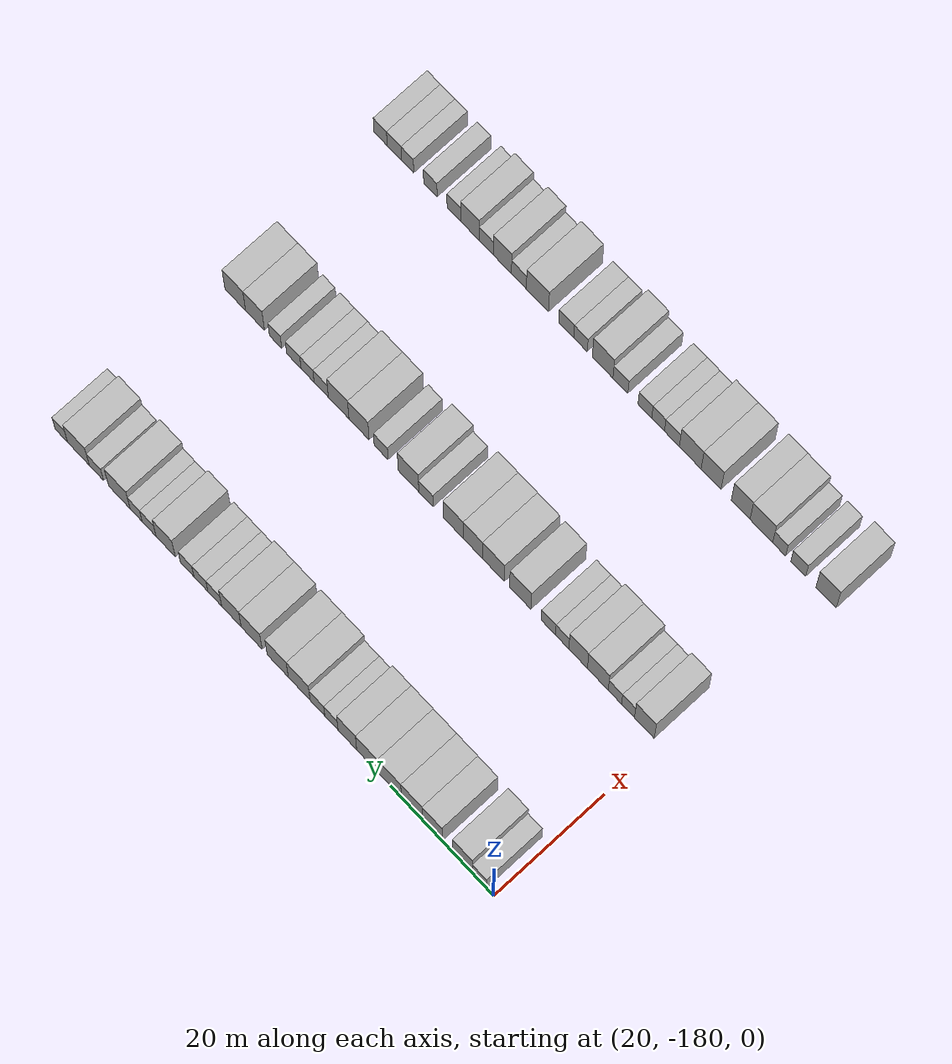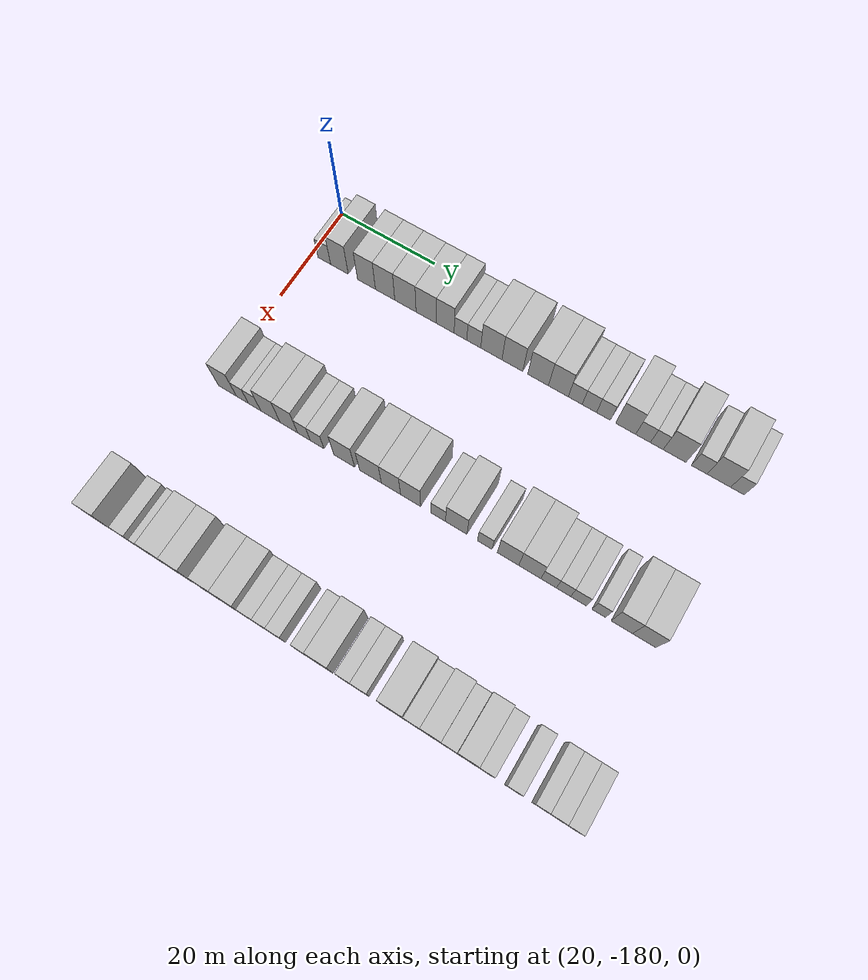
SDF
<sdf version="1.6">
 <world name="default">
  <model name="building_27">
   <static>1</static>
   <pose>25.0000 -177.2182 0 0.000000 0.000000 0.000000</pose>
   <link name="link">
    <pose>0 0 3.00 0 0 0</pose>
    <collision name="collision"><geometry><box><size>10.0000 2.7682 6.0000</size></box></geometry></collision>
    <visual name="visual">
     <cast_shadows>0</cast_shadows>
     <geometry><box><size>10.0000 2.7682 6.0000</size></box></geometry>
     <material>
      <script>
       <uri>model://HANNAS_wall/materials/scripts</uri>
       <uri>model://HANNAS_wall/materials/textures</uri>
       <name>vrc/HANNAS_wall</name>
      </script>
     </material>
    </visual>
   </link>
  </model>
  <model name="building_28">
   <static>1</static>
   <pose>25.0000 -173.9266 0 0.000000 0.000000 0.000000</pose>
   <link name="link">
    <pose>0 0 4.50 0 0 0</pose>
    <collision name="collision"><geometry><box><size>10.0000 3.8148 9.0000</size></box></geometry></collision>
    <visual name="visual">
     <cast_shadows>0</cast_shadows>
     <geometry><box><size>10.0000 3.8148 9.0000</size></box></geometry>
     <material>
      <script>
       <uri>model://HANNAS_wall/materials/scripts</uri>
       <uri>model://HANNAS_wall/materials/textures</uri>
       <name>vrc/HANNAS_wall</name>
      </script>
     </material>
    </visual>
   </link>
  </model>
  <model name="building_29">
   <static>1</static>
   <pose>25.0000 -168.0928 0 0.000000 0.000000 0.000000</pose>
   <link name="link">
    <pose>0 0 4.50 0 0 0</pose>
    <collision name="collision"><geometry><box><size>10.0000 3.8529 9.0000</size></box></geometry></collision>
    <visual name="visual">
     <cast_shadows>0</cast_shadows>
     <geometry><box><size>10.0000 3.8529 9.0000</size></box></geometry>
     <material>
      <script>
       <uri>model://HANNAS_wall/materials/scripts</uri>
       <uri>model://HANNAS_wall/materials/textures</uri>
       <name>vrc/HANNAS_wall</name>
      </script>
     </material>
    </visual>
   </link>
  </model>
  <model name="building_30">
   <static>1</static>
   <pose>25.0000 -164.1106 0 0.000000 0.000000 0.000000</pose>
   <link name="link">
    <pose>0 0 4.50 0 0 0</pose>
    <collision name="collision"><geometry><box><size>10.0000 4.1115 9.0000</size></box></geometry></collision>
    <visual name="visual">
     <cast_shadows>0</cast_shadows>
     <geometry><box><size>10.0000 4.1115 9.0000</size></box></geometry>
     <material>
      <script>
       <uri>model://HANNAS_wall/materials/scripts</uri>
       <uri>model://HANNAS_wall/materials/textures</uri>
       <name>vrc/HANNAS_wall</name>
      </script>
     </material>
    </visual>
   </link>
  </model>
  <model name="building_31">
   <static>1</static>
   <pose>25.0000 -159.8074 0 0.000000 0.000000 0.000000</pose>
   <link name="link">
    <pose>0 0 4.50 0 0 0</pose>
    <collision name="collision"><geometry><box><size>10.0000 4.4949 9.0000</size></box></geometry></collision>
    <visual name="visual">
     <cast_shadows>0</cast_shadows>
     <geometry><box><size>10.0000 4.4949 9.0000</size></box></geometry>
     <material>
      <script>
       <uri>model://HANNAS_wall/materials/scripts</uri>
       <uri>model://HANNAS_wall/materials/textures</uri>
       <name>vrc/HANNAS_wall</name>
      </script>
     </material>
    </visual>
   </link>
  </model>
  <model name="building_32">
   <static>1</static>
   <pose>25.0000 -155.4286 0 0.000000 0.000000 0.000000</pose>
   <link name="link">
    <pose>0 0 4.50 0 0 0</pose>
    <collision name="collision"><geometry><box><size>10.0000 4.2628 9.0000</size></box></geometry></collision>
    <visual name="visual">
     <cast_shadows>0</cast_shadows>
     <geometry><box><size>10.0000 4.2628 9.0000</size></box></geometry>
     <material>
      <script>
       <uri>model://HANNAS_wall/materials/scripts</uri>
       <uri>model://HANNAS_wall/materials/textures</uri>
       <name>vrc/HANNAS_wall</name>
      </script>
     </material>
    </visual>
   </link>
  </model>
  <model name="building_33">
   <static>1</static>
   <pose>25.0000 -151.4691 0 0.000000 0.000000 0.000000</pose>
   <link name="link">
    <pose>0 0 4.50 0 0 0</pose>
    <collision name="collision"><geometry><box><size>10.0000 3.6561 9.0000</size></box></geometry></collision>
    <visual name="visual">
     <cast_shadows>0</cast_shadows>
     <geometry><box><size>10.0000 3.6561 9.0000</size></box></geometry>
     <material>
      <script>
       <uri>model://HANNAS_wall/materials/scripts</uri>
       <uri>model://HANNAS_wall/materials/textures</uri>
       <name>vrc/HANNAS_wall</name>
      </script>
     </material>
    </visual>
   </link>
  </model>
  <model name="building_34">
   <static>1</static>
   <pose>25.0000 -148.3323 0 0.000000 0.000000 0.000000</pose>
   <link name="link">
    <pose>0 0 3.00 0 0 0</pose>
    <collision name="collision"><geometry><box><size>10.0000 2.6176 6.0000</size></box></geometry></collision>
    <visual name="visual">
     <cast_shadows>0</cast_shadows>
     <geometry><box><size>10.0000 2.6176 6.0000</size></box></geometry>
     <material>
      <script>
       <uri>model://HANNAS_wall/materials/scripts</uri>
       <uri>model://HANNAS_wall/materials/textures</uri>
       <name>vrc/HANNAS_wall</name>
      </script>
     </material>
    </visual>
   </link>
  </model>
  <model name="building_35">
   <static>1</static>
   <pose>25.0000 -145.5900 0 0.000000 0.000000 0.000000</pose>
   <link name="link">
    <pose>0 0 3.00 0 0 0</pose>
    <collision name="collision"><geometry><box><size>10.0000 2.8671 6.0000</size></box></geometry></collision>
    <visual name="visual">
     <cast_shadows>0</cast_shadows>
     <geometry><box><size>10.0000 2.8671 6.0000</size></box></geometry>
     <material>
      <script>
       <uri>model://HANNAS_wall/materials/scripts</uri>
       <uri>model://HANNAS_wall/materials/textures</uri>
       <name>vrc/HANNAS_wall</name>
      </script>
     </material>
    </visual>
   </link>
  </model>
  <model name="building_36">
   <static>1</static>
   <pose>25.0000 -142.0021 0 0.000000 0.000000 0.000000</pose>
   <link name="link">
    <pose>0 0 4.50 0 0 0</pose>
    <collision name="collision"><geometry><box><size>10.0000 4.3087 9.0000</size></box></geometry></collision>
    <visual name="visual">
     <cast_shadows>0</cast_shadows>
     <geometry><box><size>10.0000 4.3087 9.0000</size></box></geometry>
     <material>
      <script>
       <uri>model://HANNAS_wall/materials/scripts</uri>
       <uri>model://HANNAS_wall/materials/textures</uri>
       <name>vrc/HANNAS_wall</name>
      </script>
     </material>
    </visual>
   </link>
  </model>
  <model name="building_37">
   <static>1</static>
   <pose>25.0000 -137.7536 0 0.000000 0.000000 0.000000</pose>
   <link name="link">
    <pose>0 0 4.50 0 0 0</pose>
    <collision name="collision"><geometry><box><size>10.0000 4.1883 9.0000</size></box></geometry></collision>
    <visual name="visual">
     <cast_shadows>0</cast_shadows>
     <geometry><box><size>10.0000 4.1883 9.0000</size></box></geometry>
     <material>
      <script>
       <uri>model://HANNAS_wall/materials/scripts</uri>
       <uri>model://HANNAS_wall/materials/textures</uri>
       <name>vrc/HANNAS_wall</name>
      </script>
     </material>
    </visual>
   </link>
  </model>
  <model name="building_38">
   <static>1</static>
   <pose>25.0000 -132.5895 0 0.000000 0.000000 0.000000</pose>
   <link name="link">
    <pose>0 0 4.50 0 0 0</pose>
    <collision name="collision"><geometry><box><size>10.0000 4.1399 9.0000</size></box></geometry></collision>
    <visual name="visual">
     <cast_shadows>0</cast_shadows>
     <geometry><box><size>10.0000 4.1399 9.0000</size></box></geometry>
     <material>
      <script>
       <uri>model://HANNAS_wall/materials/scripts</uri>
       <uri>model://HANNAS_wall/materials/textures</uri>
       <name>vrc/HANNAS_wall</name>
      </script>
     </material>
    </visual>
   </link>
  </model>
  <model name="building_39">
   <static>1</static>
   <pose>25.0000 -128.5618 0 0.000000 0.000000 0.000000</pose>
   <link name="link">
    <pose>0 0 4.50 0 0 0</pose>
    <collision name="collision"><geometry><box><size>10.0000 3.9155 9.0000</size></box></geometry></collision>
    <visual name="visual">
     <cast_shadows>0</cast_shadows>
     <geometry><box><size>10.0000 3.9155 9.0000</size></box></geometry>
     <material>
      <script>
       <uri>model://HANNAS_wall/materials/scripts</uri>
       <uri>model://HANNAS_wall/materials/textures</uri>
       <name>vrc/HANNAS_wall</name>
      </script>
     </material>
    </visual>
   </link>
  </model>
  <model name="building_40">
   <static>1</static>
   <pose>25.0000 -125.2381 0 0.000000 0.000000 0.000000</pose>
   <link name="link">
    <pose>0 0 3.00 0 0 0</pose>
    <collision name="collision"><geometry><box><size>10.0000 2.7320 6.0000</size></box></geometry></collision>
    <visual name="visual">
     <cast_shadows>0</cast_shadows>
     <geometry><box><size>10.0000 2.7320 6.0000</size></box></geometry>
     <material>
      <script>
       <uri>model://HANNAS_wall/materials/scripts</uri>
       <uri>model://HANNAS_wall/materials/textures</uri>
       <name>vrc/HANNAS_wall</name>
      </script>
     </material>
    </visual>
   </link>
  </model>
  <model name="building_41">
   <static>1</static>
   <pose>25.0000 -122.4755 0 0.000000 0.000000 0.000000</pose>
   <link name="link">
    <pose>0 0 3.00 0 0 0</pose>
    <collision name="collision"><geometry><box><size>10.0000 2.7931 6.0000</size></box></geometry></collision>
    <visual name="visual">
     <cast_shadows>0</cast_shadows>
     <geometry><box><size>10.0000 2.7931 6.0000</size></box></geometry>
     <material>
      <script>
       <uri>model://HANNAS_wall/materials/scripts</uri>
       <uri>model://HANNAS_wall/materials/textures</uri>
       <name>vrc/HANNAS_wall</name>
      </script>
     </material>
    </visual>
   </link>
  </model>
  <model name="building_42">
   <static>1</static>
   <pose>25.0000 -119.7278 0 0.000000 0.000000 0.000000</pose>
   <link name="link">
    <pose>0 0 3.00 0 0 0</pose>
    <collision name="collision"><geometry><box><size>10.0000 2.7024 6.0000</size></box></geometry></collision>
    <visual name="visual">
     <cast_shadows>0</cast_shadows>
     <geometry><box><size>10.0000 2.7024 6.0000</size></box></geometry>
     <material>
      <script>
       <uri>model://HANNAS_wall/materials/scripts</uri>
       <uri>model://HANNAS_wall/materials/textures</uri>
       <name>vrc/HANNAS_wall</name>
      </script>
     </material>
    </visual>
   </link>
  </model>
  <model name="building_43">
   <static>1</static>
   <pose>25.0000 -115.4467 0 0.000000 0.000000 0.000000</pose>
   <link name="link">
    <pose>0 0 4.50 0 0 0</pose>
    <collision name="collision"><geometry><box><size>10.0000 3.8599 9.0000</size></box></geometry></collision>
    <visual name="visual">
     <cast_shadows>0</cast_shadows>
     <geometry><box><size>10.0000 3.8599 9.0000</size></box></geometry>
     <material>
      <script>
       <uri>model://HANNAS_wall/materials/scripts</uri>
       <uri>model://HANNAS_wall/materials/textures</uri>
       <name>vrc/HANNAS_wall</name>
      </script>
     </material>
    </visual>
   </link>
  </model>
  <model name="building_44">
   <static>1</static>
   <pose>25.0000 -112.1142 0 0.000000 0.000000 0.000000</pose>
   <link name="link">
    <pose>0 0 3.00 0 0 0</pose>
    <collision name="collision"><geometry><box><size>10.0000 2.8050 6.0000</size></box></geometry></collision>
    <visual name="visual">
     <cast_shadows>0</cast_shadows>
     <geometry><box><size>10.0000 2.8050 6.0000</size></box></geometry>
     <material>
      <script>
       <uri>model://HANNAS_wall/materials/scripts</uri>
       <uri>model://HANNAS_wall/materials/textures</uri>
       <name>vrc/HANNAS_wall</name>
      </script>
     </material>
    </visual>
   </link>
  </model>
  <model name="building_45">
   <static>1</static>
   <pose>25.0000 -109.5059 0 0.000000 0.000000 0.000000</pose>
   <link name="link">
    <pose>0 0 3.00 0 0 0</pose>
    <collision name="collision"><geometry><box><size>10.0000 2.4118 6.0000</size></box></geometry></collision>
    <visual name="visual">
     <cast_shadows>0</cast_shadows>
     <geometry><box><size>10.0000 2.4118 6.0000</size></box></geometry>
     <material>
      <script>
       <uri>model://HANNAS_wall/materials/scripts</uri>
       <uri>model://HANNAS_wall/materials/textures</uri>
       <name>vrc/HANNAS_wall</name>
      </script>
     </material>
    </visual>
   </link>
  </model>
  <model name="building_46">
   <static>1</static>
   <pose>25.0000 -106.1355 0 0.000000 0.000000 0.000000</pose>
   <link name="link">
    <pose>0 0 4.50 0 0 0</pose>
    <collision name="collision"><geometry><box><size>10.0000 4.3289 9.0000</size></box></geometry></collision>
    <visual name="visual">
     <cast_shadows>0</cast_shadows>
     <geometry><box><size>10.0000 4.3289 9.0000</size></box></geometry>
     <material>
      <script>
       <uri>model://HANNAS_wall/materials/scripts</uri>
       <uri>model://HANNAS_wall/materials/textures</uri>
       <name>vrc/HANNAS_wall</name>
      </script>
     </material>
    </visual>
   </link>
  </model>
  <model name="building_47">
   <static>1</static>
   <pose>25.0000 -101.5284 0 0.000000 0.000000 0.000000</pose>
   <link name="link">
    <pose>0 0 3.00 0 0 0</pose>
    <collision name="collision"><geometry><box><size>10.0000 2.8853 6.0000</size></box></geometry></collision>
    <visual name="visual">
     <cast_shadows>0</cast_shadows>
     <geometry><box><size>10.0000 2.8853 6.0000</size></box></geometry>
     <material>
      <script>
       <uri>model://HANNAS_wall/materials/scripts</uri>
       <uri>model://HANNAS_wall/materials/textures</uri>
       <name>vrc/HANNAS_wall</name>
      </script>
     </material>
    </visual>
   </link>
  </model>
  <model name="building_48">
   <static>1</static>
   <pose>25.0000 -97.8976 0 0.000000 0.000000 0.000000</pose>
   <link name="link">
    <pose>0 0 4.50 0 0 0</pose>
    <collision name="collision"><geometry><box><size>10.0000 4.3762 9.0000</size></box></geometry></collision>
    <visual name="visual">
     <cast_shadows>0</cast_shadows>
     <geometry><box><size>10.0000 4.3762 9.0000</size></box></geometry>
     <material>
      <script>
       <uri>model://HANNAS_wall/materials/scripts</uri>
       <uri>model://HANNAS_wall/materials/textures</uri>
       <name>vrc/HANNAS_wall</name>
      </script>
     </material>
    </visual>
   </link>
  </model>
  <model name="building_49">
   <static>1</static>
   <pose>25.0000 -94.4482 0 0.000000 0.000000 0.000000</pose>
   <link name="link">
    <pose>0 0 3.00 0 0 0</pose>
    <collision name="collision"><geometry><box><size>10.0000 2.5226 6.0000</size></box></geometry></collision>
    <visual name="visual">
     <cast_shadows>0</cast_shadows>
     <geometry><box><size>10.0000 2.5226 6.0000</size></box></geometry>
     <material>
      <script>
       <uri>model://HANNAS_wall/materials/scripts</uri>
       <uri>model://HANNAS_wall/materials/textures</uri>
       <name>vrc/HANNAS_wall</name>
      </script>
     </material>
    </visual>
   </link>
  </model>
  <model name="building_167">
   <static>1</static>
   <pose>55.0000 -177.0969 0 0.000000 0.000000 0.000000</pose>
   <link name="link">
    <pose>0 0 4.50 0 0 0</pose>
    <collision name="collision"><geometry><box><size>10.0000 3.8273 9.0000</size></box></geometry></collision>
    <visual name="visual">
     <cast_shadows>0</cast_shadows>
     <geometry><box><size>10.0000 3.8273 9.0000</size></box></geometry>
     <material>
      <script>
       <uri>model://HANNAS_wall/materials/scripts</uri>
       <uri>model://HANNAS_wall/materials/textures</uri>
       <name>vrc/HANNAS_wall</name>
      </script>
     </material>
    </visual>
   </link>
  </model>
  <model name="building_168">
   <static>1</static>
   <pose>55.0000 -173.9280 0 0.000000 0.000000 0.000000</pose>
   <link name="link">
    <pose>0 0 3.00 0 0 0</pose>
    <collision name="collision"><geometry><box><size>10.0000 2.5105 6.0000</size></box></geometry></collision>
    <visual name="visual">
     <cast_shadows>0</cast_shadows>
     <geometry><box><size>10.0000 2.5105 6.0000</size></box></geometry>
     <material>
      <script>
       <uri>model://HANNAS_wall/materials/scripts</uri>
       <uri>model://HANNAS_wall/materials/textures</uri>
       <name>vrc/HANNAS_wall</name>
      </script>
     </material>
    </visual>
   </link>
  </model>
  <model name="building_169">
   <static>1</static>
   <pose>55.0000 -171.3794 0 0.000000 0.000000 0.000000</pose>
   <link name="link">
    <pose>0 0 3.00 0 0 0</pose>
    <collision name="collision"><geometry><box><size>10.0000 2.5869 6.0000</size></box></geometry></collision>
    <visual name="visual">
     <cast_shadows>0</cast_shadows>
     <geometry><box><size>10.0000 2.5869 6.0000</size></box></geometry>
     <material>
      <script>
       <uri>model://HANNAS_wall/materials/scripts</uri>
       <uri>model://HANNAS_wall/materials/textures</uri>
       <name>vrc/HANNAS_wall</name>
      </script>
     </material>
    </visual>
   </link>
  </model>
  <model name="building_170">
   <static>1</static>
   <pose>55.0000 -168.0679 0 0.000000 0.000000 0.000000</pose>
   <link name="link">
    <pose>0 0 4.50 0 0 0</pose>
    <collision name="collision"><geometry><box><size>10.0000 4.0361 9.0000</size></box></geometry></collision>
    <visual name="visual">
     <cast_shadows>0</cast_shadows>
     <geometry><box><size>10.0000 4.0361 9.0000</size></box></geometry>
     <material>
      <script>
       <uri>model://HANNAS_wall/materials/scripts</uri>
       <uri>model://HANNAS_wall/materials/textures</uri>
       <name>vrc/HANNAS_wall</name>
      </script>
     </material>
    </visual>
   </link>
  </model>
  <model name="building_171">
   <static>1</static>
   <pose>55.0000 -164.2336 0 0.000000 0.000000 0.000000</pose>
   <link name="link">
    <pose>0 0 4.50 0 0 0</pose>
    <collision name="collision"><geometry><box><size>10.0000 3.6324 9.0000</size></box></geometry></collision>
    <visual name="visual">
     <cast_shadows>0</cast_shadows>
     <geometry><box><size>10.0000 3.6324 9.0000</size></box></geometry>
     <material>
      <script>
       <uri>model://HANNAS_wall/materials/scripts</uri>
       <uri>model://HANNAS_wall/materials/textures</uri>
       <name>vrc/HANNAS_wall</name>
      </script>
     </material>
    </visual>
   </link>
  </model>
  <model name="building_172">
   <static>1</static>
   <pose>55.0000 -161.1161 0 0.000000 0.000000 0.000000</pose>
   <link name="link">
    <pose>0 0 3.00 0 0 0</pose>
    <collision name="collision"><geometry><box><size>10.0000 2.6025 6.0000</size></box></geometry></collision>
    <visual name="visual">
     <cast_shadows>0</cast_shadows>
     <geometry><box><size>10.0000 2.6025 6.0000</size></box></geometry>
     <material>
      <script>
       <uri>model://HANNAS_wall/materials/scripts</uri>
       <uri>model://HANNAS_wall/materials/textures</uri>
       <name>vrc/HANNAS_wall</name>
      </script>
     </material>
    </visual>
   </link>
  </model>
  <model name="building_173">
   <static>1</static>
   <pose>55.0000 -158.4232 0 0.000000 0.000000 0.000000</pose>
   <link name="link">
    <pose>0 0 3.00 0 0 0</pose>
    <collision name="collision"><geometry><box><size>10.0000 2.7833 6.0000</size></box></geometry></collision>
    <visual name="visual">
     <cast_shadows>0</cast_shadows>
     <geometry><box><size>10.0000 2.7833 6.0000</size></box></geometry>
     <material>
      <script>
       <uri>model://HANNAS_wall/materials/scripts</uri>
       <uri>model://HANNAS_wall/materials/textures</uri>
       <name>vrc/HANNAS_wall</name>
      </script>
     </material>
    </visual>
   </link>
  </model>
  <model name="building_174">
   <static>1</static>
   <pose>55.0000 -152.9351 0 0.000000 0.000000 0.000000</pose>
   <link name="link">
    <pose>0 0 4.50 0 0 0</pose>
    <collision name="collision"><geometry><box><size>10.0000 4.1929 9.0000</size></box></geometry></collision>
    <visual name="visual">
     <cast_shadows>0</cast_shadows>
     <geometry><box><size>10.0000 4.1929 9.0000</size></box></geometry>
     <material>
      <script>
       <uri>model://HANNAS_wall/materials/scripts</uri>
       <uri>model://HANNAS_wall/materials/textures</uri>
       <name>vrc/HANNAS_wall</name>
      </script>
     </material>
    </visual>
   </link>
  </model>
  <model name="building_175">
   <static>1</static>
   <pose>55.0000 -147.6705 0 0.000000 0.000000 0.000000</pose>
   <link name="link">
    <pose>0 0 4.50 0 0 0</pose>
    <collision name="collision"><geometry><box><size>10.0000 4.3363 9.0000</size></box></geometry></collision>
    <visual name="visual">
     <cast_shadows>0</cast_shadows>
     <geometry><box><size>10.0000 4.3363 9.0000</size></box></geometry>
     <material>
      <script>
       <uri>model://HANNAS_wall/materials/scripts</uri>
       <uri>model://HANNAS_wall/materials/textures</uri>
       <name>vrc/HANNAS_wall</name>
      </script>
     </material>
    </visual>
   </link>
  </model>
  <model name="building_176">
   <static>1</static>
   <pose>55.0000 -143.6150 0 0.000000 0.000000 0.000000</pose>
   <link name="link">
    <pose>0 0 4.50 0 0 0</pose>
    <collision name="collision"><geometry><box><size>10.0000 3.7746 9.0000</size></box></geometry></collision>
    <visual name="visual">
     <cast_shadows>0</cast_shadows>
     <geometry><box><size>10.0000 3.7746 9.0000</size></box></geometry>
     <material>
      <script>
       <uri>model://HANNAS_wall/materials/scripts</uri>
       <uri>model://HANNAS_wall/materials/textures</uri>
       <name>vrc/HANNAS_wall</name>
      </script>
     </material>
    </visual>
   </link>
  </model>
  <model name="building_177">
   <static>1</static>
   <pose>55.0000 -139.7602 0 0.000000 0.000000 0.000000</pose>
   <link name="link">
    <pose>0 0 4.50 0 0 0</pose>
    <collision name="collision"><geometry><box><size>10.0000 3.9351 9.0000</size></box></geometry></collision>
    <visual name="visual">
     <cast_shadows>0</cast_shadows>
     <geometry><box><size>10.0000 3.9351 9.0000</size></box></geometry>
     <material>
      <script>
       <uri>model://HANNAS_wall/materials/scripts</uri>
       <uri>model://HANNAS_wall/materials/textures</uri>
       <name>vrc/HANNAS_wall</name>
      </script>
     </material>
    </visual>
   </link>
  </model>
  <model name="building_178">
   <static>1</static>
   <pose>55.0000 -134.3694 0 0.000000 0.000000 0.000000</pose>
   <link name="link">
    <pose>0 0 3.00 0 0 0</pose>
    <collision name="collision"><geometry><box><size>10.0000 2.8466 6.0000</size></box></geometry></collision>
    <visual name="visual">
     <cast_shadows>0</cast_shadows>
     <geometry><box><size>10.0000 2.8466 6.0000</size></box></geometry>
     <material>
      <script>
       <uri>model://HANNAS_wall/materials/scripts</uri>
       <uri>model://HANNAS_wall/materials/textures</uri>
       <name>vrc/HANNAS_wall</name>
      </script>
     </material>
    </visual>
   </link>
  </model>
  <model name="building_179">
   <static>1</static>
   <pose>55.0000 -130.8992 0 0.000000 0.000000 0.000000</pose>
   <link name="link">
    <pose>0 0 4.50 0 0 0</pose>
    <collision name="collision"><geometry><box><size>10.0000 4.0937 9.0000</size></box></geometry></collision>
    <visual name="visual">
     <cast_shadows>0</cast_shadows>
     <geometry><box><size>10.0000 4.0937 9.0000</size></box></geometry>
     <material>
      <script>
       <uri>model://HANNAS_wall/materials/scripts</uri>
       <uri>model://HANNAS_wall/materials/textures</uri>
       <name>vrc/HANNAS_wall</name>
      </script>
     </material>
    </visual>
   </link>
  </model>
  <model name="building_180">
   <static>1</static>
   <pose>55.0000 -125.4687 0 0.000000 0.000000 0.000000</pose>
   <link name="link">
    <pose>0 0 3.00 0 0 0</pose>
    <collision name="collision"><geometry><box><size>10.0000 2.7675 6.0000</size></box></geometry></collision>
    <visual name="visual">
     <cast_shadows>0</cast_shadows>
     <geometry><box><size>10.0000 2.7675 6.0000</size></box></geometry>
     <material>
      <script>
       <uri>model://HANNAS_wall/materials/scripts</uri>
       <uri>model://HANNAS_wall/materials/textures</uri>
       <name>vrc/HANNAS_wall</name>
      </script>
     </material>
    </visual>
   </link>
  </model>
  <model name="building_181">
   <static>1</static>
   <pose>55.0000 -121.0749 0 0.000000 0.000000 0.000000</pose>
   <link name="link">
    <pose>0 0 4.50 0 0 0</pose>
    <collision name="collision"><geometry><box><size>10.0000 4.0200 9.0000</size></box></geometry></collision>
    <visual name="visual">
     <cast_shadows>0</cast_shadows>
     <geometry><box><size>10.0000 4.0200 9.0000</size></box></geometry>
     <material>
      <script>
       <uri>model://HANNAS_wall/materials/scripts</uri>
       <uri>model://HANNAS_wall/materials/textures</uri>
       <name>vrc/HANNAS_wall</name>
      </script>
     </material>
    </visual>
   </link>
  </model>
  <model name="building_182">
   <static>1</static>
   <pose>55.0000 -117.0089 0 0.000000 0.000000 0.000000</pose>
   <link name="link">
    <pose>0 0 4.50 0 0 0</pose>
    <collision name="collision"><geometry><box><size>10.0000 4.1121 9.0000</size></box></geometry></collision>
    <visual name="visual">
     <cast_shadows>0</cast_shadows>
     <geometry><box><size>10.0000 4.1121 9.0000</size></box></geometry>
     <material>
      <script>
       <uri>model://HANNAS_wall/materials/scripts</uri>
       <uri>model://HANNAS_wall/materials/textures</uri>
       <name>vrc/HANNAS_wall</name>
      </script>
     </material>
    </visual>
   </link>
  </model>
  <model name="building_183">
   <static>1</static>
   <pose>55.0000 -113.5258 0 0.000000 0.000000 0.000000</pose>
   <link name="link">
    <pose>0 0 3.00 0 0 0</pose>
    <collision name="collision"><geometry><box><size>10.0000 2.8540 6.0000</size></box></geometry></collision>
    <visual name="visual">
     <cast_shadows>0</cast_shadows>
     <geometry><box><size>10.0000 2.8540 6.0000</size></box></geometry>
     <material>
      <script>
       <uri>model://HANNAS_wall/materials/scripts</uri>
       <uri>model://HANNAS_wall/materials/textures</uri>
       <name>vrc/HANNAS_wall</name>
      </script>
     </material>
    </visual>
   </link>
  </model>
  <model name="building_184">
   <static>1</static>
   <pose>55.0000 -110.7935 0 0.000000 0.000000 0.000000</pose>
   <link name="link">
    <pose>0 0 3.00 0 0 0</pose>
    <collision name="collision"><geometry><box><size>10.0000 2.6106 6.0000</size></box></geometry></collision>
    <visual name="visual">
     <cast_shadows>0</cast_shadows>
     <geometry><box><size>10.0000 2.6106 6.0000</size></box></geometry>
     <material>
      <script>
       <uri>model://HANNAS_wall/materials/scripts</uri>
       <uri>model://HANNAS_wall/materials/textures</uri>
       <name>vrc/HANNAS_wall</name>
      </script>
     </material>
    </visual>
   </link>
  </model>
  <model name="building_185">
   <static>1</static>
   <pose>55.0000 -108.0452 0 0.000000 0.000000 0.000000</pose>
   <link name="link">
    <pose>0 0 3.00 0 0 0</pose>
    <collision name="collision"><geometry><box><size>10.0000 2.8860 6.0000</size></box></geometry></collision>
    <visual name="visual">
     <cast_shadows>0</cast_shadows>
     <geometry><box><size>10.0000 2.8860 6.0000</size></box></geometry>
     <material>
      <script>
       <uri>model://HANNAS_wall/materials/scripts</uri>
       <uri>model://HANNAS_wall/materials/textures</uri>
       <name>vrc/HANNAS_wall</name>
      </script>
     </material>
    </visual>
   </link>
  </model>
  <model name="building_186">
   <static>1</static>
   <pose>55.0000 -104.3649 0 0.000000 0.000000 0.000000</pose>
   <link name="link">
    <pose>0 0 3.00 0 0 0</pose>
    <collision name="collision"><geometry><box><size>10.0000 2.4746 6.0000</size></box></geometry></collision>
    <visual name="visual">
     <cast_shadows>0</cast_shadows>
     <geometry><box><size>10.0000 2.4746 6.0000</size></box></geometry>
     <material>
      <script>
       <uri>model://HANNAS_wall/materials/scripts</uri>
       <uri>model://HANNAS_wall/materials/textures</uri>
       <name>vrc/HANNAS_wall</name>
      </script>
     </material>
    </visual>
   </link>
  </model>
  <model name="building_187">
   <static>1</static>
   <pose>55.0000 -100.2227 0 0.000000 0.000000 0.000000</pose>
   <link name="link">
    <pose>0 0 4.50 0 0 0</pose>
    <collision name="collision"><geometry><box><size>10.0000 3.8096 9.0000</size></box></geometry></collision>
    <visual name="visual">
     <cast_shadows>0</cast_shadows>
     <geometry><box><size>10.0000 3.8096 9.0000</size></box></geometry>
     <material>
      <script>
       <uri>model://HANNAS_wall/materials/scripts</uri>
       <uri>model://HANNAS_wall/materials/textures</uri>
       <name>vrc/HANNAS_wall</name>
      </script>
     </material>
    </visual>
   </link>
  </model>
  <model name="building_188">
   <static>1</static>
   <pose>55.0000 -96.2399 0 0.000000 0.000000 0.000000</pose>
   <link name="link">
    <pose>0 0 4.50 0 0 0</pose>
    <collision name="collision"><geometry><box><size>10.0000 4.1561 9.0000</size></box></geometry></collision>
    <visual name="visual">
     <cast_shadows>0</cast_shadows>
     <geometry><box><size>10.0000 4.1561 9.0000</size></box></geometry>
     <material>
      <script>
       <uri>model://HANNAS_wall/materials/scripts</uri>
       <uri>model://HANNAS_wall/materials/textures</uri>
       <name>vrc/HANNAS_wall</name>
      </script>
     </material>
    </visual>
   </link>
  </model>
  <model name="building_300">
   <static>1</static>
   <pose>85.0000 -180.7163 0 0.000000 0.000000 0.000000</pose>
   <link name="link">
    <pose>0 0 4.50 0 0 0</pose>
    <collision name="collision"><geometry><box><size>10.0000 3.8981 9.0000</size></box></geometry></collision>
    <visual name="visual">
     <cast_shadows>0</cast_shadows>
     <geometry><box><size>10.0000 3.8981 9.0000</size></box></geometry>
     <material>
      <script>
       <uri>model://HANNAS_wall/materials/scripts</uri>
       <uri>model://HANNAS_wall/materials/textures</uri>
       <name>vrc/HANNAS_wall</name>
      </script>
     </material>
    </visual>
   </link>
  </model>
  <model name="building_301">
   <static>1</static>
   <pose>85.0000 -175.3296 0 0.000000 0.000000 0.000000</pose>
   <link name="link">
    <pose>0 0 3.00 0 0 0</pose>
    <collision name="collision"><geometry><box><size>10.0000 2.8752 6.0000</size></box></geometry></collision>
    <visual name="visual">
     <cast_shadows>0</cast_shadows>
     <geometry><box><size>10.0000 2.8752 6.0000</size></box></geometry>
     <material>
      <script>
       <uri>model://HANNAS_wall/materials/scripts</uri>
       <uri>model://HANNAS_wall/materials/textures</uri>
       <name>vrc/HANNAS_wall</name>
      </script>
     </material>
    </visual>
   </link>
  </model>
  <model name="building_302">
   <static>1</static>
   <pose>85.0000 -171.6399 0 0.000000 0.000000 0.000000</pose>
   <link name="link">
    <pose>0 0 3.00 0 0 0</pose>
    <collision name="collision"><geometry><box><size>10.0000 2.5043 6.0000</size></box></geometry></collision>
    <visual name="visual">
     <cast_shadows>0</cast_shadows>
     <geometry><box><size>10.0000 2.5043 6.0000</size></box></geometry>
     <material>
      <script>
       <uri>model://HANNAS_wall/materials/scripts</uri>
       <uri>model://HANNAS_wall/materials/textures</uri>
       <name>vrc/HANNAS_wall</name>
      </script>
     </material>
    </visual>
   </link>
  </model>
  <model name="building_303">
   <static>1</static>
   <pose>85.0000 -168.1917 0 0.000000 0.000000 0.000000</pose>
   <link name="link">
    <pose>0 0 4.50 0 0 0</pose>
    <collision name="collision"><geometry><box><size>10.0000 4.3919 9.0000</size></box></geometry></collision>
    <visual name="visual">
     <cast_shadows>0</cast_shadows>
     <geometry><box><size>10.0000 4.3919 9.0000</size></box></geometry>
     <material>
      <script>
       <uri>model://HANNAS_wall/materials/scripts</uri>
       <uri>model://HANNAS_wall/materials/textures</uri>
       <name>vrc/HANNAS_wall</name>
      </script>
     </material>
    </visual>
   </link>
  </model>
  <model name="building_304">
   <static>1</static>
   <pose>85.0000 -164.1721 0 0.000000 0.000000 0.000000</pose>
   <link name="link">
    <pose>0 0 4.50 0 0 0</pose>
    <collision name="collision"><geometry><box><size>10.0000 3.6474 9.0000</size></box></geometry></collision>
    <visual name="visual">
     <cast_shadows>0</cast_shadows>
     <geometry><box><size>10.0000 3.6474 9.0000</size></box></geometry>
     <material>
      <script>
       <uri>model://HANNAS_wall/materials/scripts</uri>
       <uri>model://HANNAS_wall/materials/textures</uri>
       <name>vrc/HANNAS_wall</name>
      </script>
     </material>
    </visual>
   </link>
  </model>
  <model name="building_305">
   <static>1</static>
   <pose>85.0000 -158.4035 0 0.000000 0.000000 0.000000</pose>
   <link name="link">
    <pose>0 0 4.50 0 0 0</pose>
    <collision name="collision"><geometry><box><size>10.0000 3.8898 9.0000</size></box></geometry></collision>
    <visual name="visual">
     <cast_shadows>0</cast_shadows>
     <geometry><box><size>10.0000 3.8898 9.0000</size></box></geometry>
     <material>
      <script>
       <uri>model://HANNAS_wall/materials/scripts</uri>
       <uri>model://HANNAS_wall/materials/textures</uri>
       <name>vrc/HANNAS_wall</name>
      </script>
     </material>
    </visual>
   </link>
  </model>
  <model name="building_306">
   <static>1</static>
   <pose>85.0000 -154.3269 0 0.000000 0.000000 0.000000</pose>
   <link name="link">
    <pose>0 0 4.50 0 0 0</pose>
    <collision name="collision"><geometry><box><size>10.0000 4.2634 9.0000</size></box></geometry></collision>
    <visual name="visual">
     <cast_shadows>0</cast_shadows>
     <geometry><box><size>10.0000 4.2634 9.0000</size></box></geometry>
     <material>
      <script>
       <uri>model://HANNAS_wall/materials/scripts</uri>
       <uri>model://HANNAS_wall/materials/textures</uri>
       <name>vrc/HANNAS_wall</name>
      </script>
     </material>
    </visual>
   </link>
  </model>
  <model name="building_307">
   <static>1</static>
   <pose>85.0000 -150.7397 0 0.000000 0.000000 0.000000</pose>
   <link name="link">
    <pose>0 0 3.00 0 0 0</pose>
    <collision name="collision"><geometry><box><size>10.0000 2.9110 6.0000</size></box></geometry></collision>
    <visual name="visual">
     <cast_shadows>0</cast_shadows>
     <geometry><box><size>10.0000 2.9110 6.0000</size></box></geometry>
     <material>
      <script>
       <uri>model://HANNAS_wall/materials/scripts</uri>
       <uri>model://HANNAS_wall/materials/textures</uri>
       <name>vrc/HANNAS_wall</name>
      </script>
     </material>
    </visual>
   </link>
  </model>
  <model name="building_308">
   <static>1</static>
   <pose>85.0000 -148.0297 0 0.000000 0.000000 0.000000</pose>
   <link name="link">
    <pose>0 0 3.00 0 0 0</pose>
    <collision name="collision"><geometry><box><size>10.0000 2.5089 6.0000</size></box></geometry></collision>
    <visual name="visual">
     <cast_shadows>0</cast_shadows>
     <geometry><box><size>10.0000 2.5089 6.0000</size></box></geometry>
     <material>
      <script>
       <uri>model://HANNAS_wall/materials/scripts</uri>
       <uri>model://HANNAS_wall/materials/textures</uri>
       <name>vrc/HANNAS_wall</name>
      </script>
     </material>
    </visual>
   </link>
  </model>
  <model name="building_309">
   <static>1</static>
   <pose>85.0000 -145.4310 0 0.000000 0.000000 0.000000</pose>
   <link name="link">
    <pose>0 0 3.00 0 0 0</pose>
    <collision name="collision"><geometry><box><size>10.0000 2.6885 6.0000</size></box></geometry></collision>
    <visual name="visual">
     <cast_shadows>0</cast_shadows>
     <geometry><box><size>10.0000 2.6885 6.0000</size></box></geometry>
     <material>
      <script>
       <uri>model://HANNAS_wall/materials/scripts</uri>
       <uri>model://HANNAS_wall/materials/textures</uri>
       <name>vrc/HANNAS_wall</name>
      </script>
     </material>
    </visual>
   </link>
  </model>
  <model name="building_310">
   <static>1</static>
   <pose>85.0000 -140.6175 0 0.000000 0.000000 0.000000</pose>
   <link name="link">
    <pose>0 0 3.00 0 0 0</pose>
    <collision name="collision"><geometry><box><size>10.0000 2.9386 6.0000</size></box></geometry></collision>
    <visual name="visual">
     <cast_shadows>0</cast_shadows>
     <geometry><box><size>10.0000 2.9386 6.0000</size></box></geometry>
     <material>
      <script>
       <uri>model://HANNAS_wall/materials/scripts</uri>
       <uri>model://HANNAS_wall/materials/textures</uri>
       <name>vrc/HANNAS_wall</name>
      </script>
     </material>
    </visual>
   </link>
  </model>
  <model name="building_311">
   <static>1</static>
   <pose>85.0000 -137.1089 0 0.000000 0.000000 0.000000</pose>
   <link name="link">
    <pose>0 0 4.50 0 0 0</pose>
    <collision name="collision"><geometry><box><size>10.0000 4.0787 9.0000</size></box></geometry></collision>
    <visual name="visual">
     <cast_shadows>0</cast_shadows>
     <geometry><box><size>10.0000 4.0787 9.0000</size></box></geometry>
     <material>
      <script>
       <uri>model://HANNAS_wall/materials/scripts</uri>
       <uri>model://HANNAS_wall/materials/textures</uri>
       <name>vrc/HANNAS_wall</name>
      </script>
     </material>
    </visual>
   </link>
  </model>
  <model name="building_312">
   <static>1</static>
   <pose>85.0000 -132.7272 0 0.000000 0.000000 0.000000</pose>
   <link name="link">
    <pose>0 0 3.00 0 0 0</pose>
    <collision name="collision"><geometry><box><size>10.0000 2.6846 6.0000</size></box></geometry></collision>
    <visual name="visual">
     <cast_shadows>0</cast_shadows>
     <geometry><box><size>10.0000 2.6846 6.0000</size></box></geometry>
     <material>
      <script>
       <uri>model://HANNAS_wall/materials/scripts</uri>
       <uri>model://HANNAS_wall/materials/textures</uri>
       <name>vrc/HANNAS_wall</name>
      </script>
     </material>
    </visual>
   </link>
  </model>
  <model name="building_313">
   <static>1</static>
   <pose>85.0000 -129.8931 0 0.000000 0.000000 0.000000</pose>
   <link name="link">
    <pose>0 0 3.00 0 0 0</pose>
    <collision name="collision"><geometry><box><size>10.0000 2.9837 6.0000</size></box></geometry></collision>
    <visual name="visual">
     <cast_shadows>0</cast_shadows>
     <geometry><box><size>10.0000 2.9837 6.0000</size></box></geometry>
     <material>
      <script>
       <uri>model://HANNAS_wall/materials/scripts</uri>
       <uri>model://HANNAS_wall/materials/textures</uri>
       <name>vrc/HANNAS_wall</name>
      </script>
     </material>
    </visual>
   </link>
  </model>
  <model name="building_314">
   <static>1</static>
   <pose>85.0000 -124.1941 0 0.000000 0.000000 0.000000</pose>
   <link name="link">
    <pose>0 0 4.50 0 0 0</pose>
    <collision name="collision"><geometry><box><size>10.0000 4.4144 9.0000</size></box></geometry></collision>
    <visual name="visual">
     <cast_shadows>0</cast_shadows>
     <geometry><box><size>10.0000 4.4144 9.0000</size></box></geometry>
     <material>
      <script>
       <uri>model://HANNAS_wall/materials/scripts</uri>
       <uri>model://HANNAS_wall/materials/textures</uri>
       <name>vrc/HANNAS_wall</name>
      </script>
     </material>
    </visual>
   </link>
  </model>
  <model name="building_315">
   <static>1</static>
   <pose>85.0000 -120.4985 0 0.000000 0.000000 0.000000</pose>
   <link name="link">
    <pose>0 0 3.00 0 0 0</pose>
    <collision name="collision"><geometry><box><size>10.0000 2.9768 6.0000</size></box></geometry></collision>
    <visual name="visual">
     <cast_shadows>0</cast_shadows>
     <geometry><box><size>10.0000 2.9768 6.0000</size></box></geometry>
     <material>
      <script>
       <uri>model://HANNAS_wall/materials/scripts</uri>
       <uri>model://HANNAS_wall/materials/textures</uri>
       <name>vrc/HANNAS_wall</name>
      </script>
     </material>
    </visual>
   </link>
  </model>
  <model name="building_316">
   <static>1</static>
   <pose>85.0000 -117.1982 0 0.000000 0.000000 0.000000</pose>
   <link name="link">
    <pose>0 0 4.50 0 0 0</pose>
    <collision name="collision"><geometry><box><size>10.0000 3.6237 9.0000</size></box></geometry></collision>
    <visual name="visual">
     <cast_shadows>0</cast_shadows>
     <geometry><box><size>10.0000 3.6237 9.0000</size></box></geometry>
     <material>
      <script>
       <uri>model://HANNAS_wall/materials/scripts</uri>
       <uri>model://HANNAS_wall/materials/textures</uri>
       <name>vrc/HANNAS_wall</name>
      </script>
     </material>
    </visual>
   </link>
  </model>
  <model name="building_317">
   <static>1</static>
   <pose>85.0000 -113.9893 0 0.000000 0.000000 0.000000</pose>
   <link name="link">
    <pose>0 0 3.00 0 0 0</pose>
    <collision name="collision"><geometry><box><size>10.0000 2.7941 6.0000</size></box></geometry></collision>
    <visual name="visual">
     <cast_shadows>0</cast_shadows>
     <geometry><box><size>10.0000 2.7941 6.0000</size></box></geometry>
     <material>
      <script>
       <uri>model://HANNAS_wall/materials/scripts</uri>
       <uri>model://HANNAS_wall/materials/textures</uri>
       <name>vrc/HANNAS_wall</name>
      </script>
     </material>
    </visual>
   </link>
  </model>
  <model name="building_318">
   <static>1</static>
   <pose>85.0000 -110.7535 0 0.000000 0.000000 0.000000</pose>
   <link name="link">
    <pose>0 0 4.50 0 0 0</pose>
    <collision name="collision"><geometry><box><size>10.0000 3.6775 9.0000</size></box></geometry></collision>
    <visual name="visual">
     <cast_shadows>0</cast_shadows>
     <geometry><box><size>10.0000 3.6775 9.0000</size></box></geometry>
     <material>
      <script>
       <uri>model://HANNAS_wall/materials/scripts</uri>
       <uri>model://HANNAS_wall/materials/textures</uri>
       <name>vrc/HANNAS_wall</name>
      </script>
     </material>
    </visual>
   </link>
  </model>
  <model name="building_319">
   <static>1</static>
   <pose>85.0000 -107.5313 0 0.000000 0.000000 0.000000</pose>
   <link name="link">
    <pose>0 0 3.00 0 0 0</pose>
    <collision name="collision"><geometry><box><size>10.0000 2.7669 6.0000</size></box></geometry></collision>
    <visual name="visual">
     <cast_shadows>0</cast_shadows>
     <geometry><box><size>10.0000 2.7669 6.0000</size></box></geometry>
     <material>
      <script>
       <uri>model://HANNAS_wall/materials/scripts</uri>
       <uri>model://HANNAS_wall/materials/textures</uri>
       <name>vrc/HANNAS_wall</name>
      </script>
     </material>
    </visual>
   </link>
  </model>
  <model name="building_320">
   <static>1</static>
   <pose>85.0000 -102.7969 0 0.000000 0.000000 0.000000</pose>
   <link name="link">
    <pose>0 0 3.00 0 0 0</pose>
    <collision name="collision"><geometry><box><size>10.0000 2.7020 6.0000</size></box></geometry></collision>
    <visual name="visual">
     <cast_shadows>0</cast_shadows>
     <geometry><box><size>10.0000 2.7020 6.0000</size></box></geometry>
     <material>
      <script>
       <uri>model://HANNAS_wall/materials/scripts</uri>
       <uri>model://HANNAS_wall/materials/textures</uri>
       <name>vrc/HANNAS_wall</name>
      </script>
     </material>
    </visual>
   </link>
  </model>
  <model name="building_321">
   <static>1</static>
   <pose>85.0000 -98.2113 0 0.000000 0.000000 0.000000</pose>
   <link name="link">
    <pose>0 0 3.00 0 0 0</pose>
    <collision name="collision"><geometry><box><size>10.0000 2.4693 6.0000</size></box></geometry></collision>
    <visual name="visual">
     <cast_shadows>0</cast_shadows>
     <geometry><box><size>10.0000 2.4693 6.0000</size></box></geometry>
     <material>
      <script>
       <uri>model://HANNAS_wall/materials/scripts</uri>
       <uri>model://HANNAS_wall/materials/textures</uri>
       <name>vrc/HANNAS_wall</name>
      </script>
     </material>
    </visual>
   </link>
  </model>
  <model name="building_322">
   <static>1</static>
   <pose>85.0000 -95.5287 0 0.000000 0.000000 0.000000</pose>
   <link name="link">
    <pose>0 0 3.00 0 0 0</pose>
    <collision name="collision"><geometry><box><size>10.0000 2.8959 6.0000</size></box></geometry></collision>
    <visual name="visual">
     <cast_shadows>0</cast_shadows>
     <geometry><box><size>10.0000 2.8959 6.0000</size></box></geometry>
     <material>
      <script>
       <uri>model://HANNAS_wall/materials/scripts</uri>
       <uri>model://HANNAS_wall/materials/textures</uri>
       <name>vrc/HANNAS_wall</name>
      </script>
     </material>
    </visual>
   </link>
  </model>
  <model name="building_323">
   <static>1</static>
   <pose>85.0000 -92.7502 0 0.000000 0.000000 0.000000</pose>
   <link name="link">
    <pose>0 0 3.00 0 0 0</pose>
    <collision name="collision"><geometry><box><size>10.0000 2.6611 6.0000</size></box></geometry></collision>
    <visual name="visual">
     <cast_shadows>0</cast_shadows>
     <geometry><box><size>10.0000 2.6611 6.0000</size></box></geometry>
     <material>
      <script>
       <uri>model://HANNAS_wall/materials/scripts</uri>
       <uri>model://HANNAS_wall/materials/textures</uri>
       <name>vrc/HANNAS_wall</name>
      </script>
     </material>
    </visual>
   </link>
  </model>
 </world>
</sdf>
